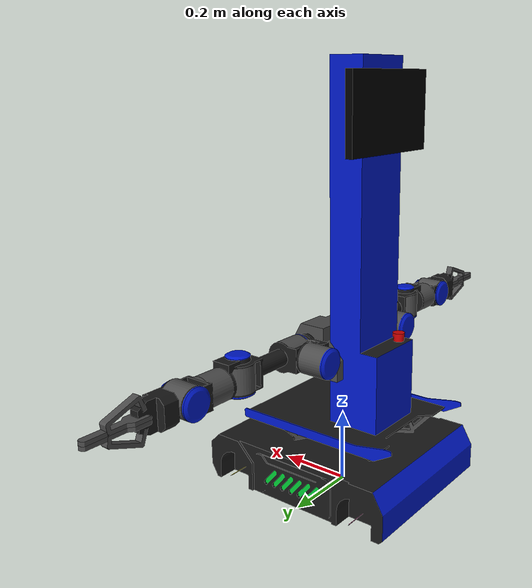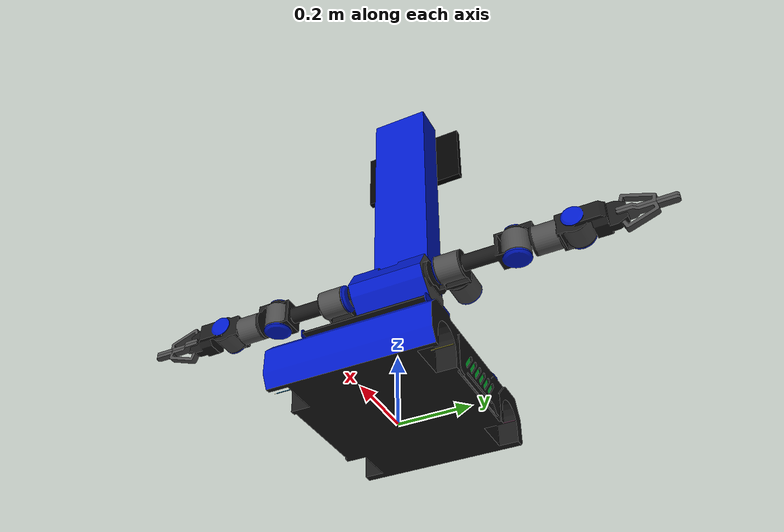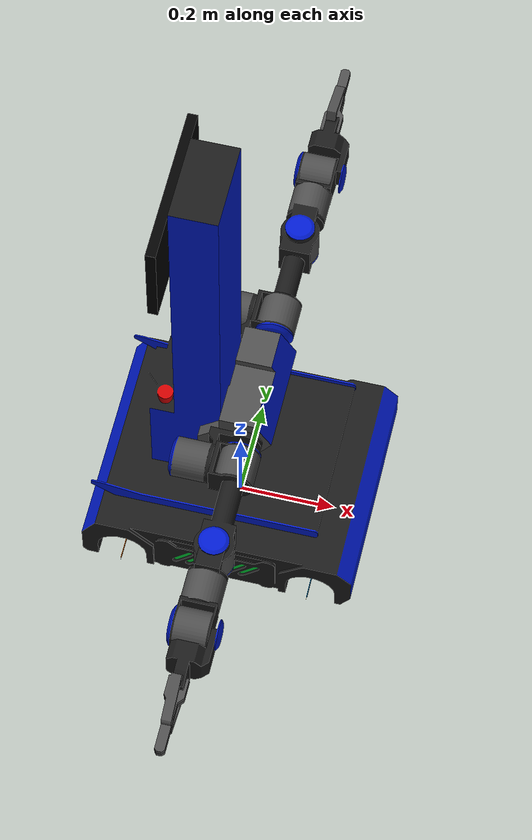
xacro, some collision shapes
<?xml version="1.0"?>
<robot name="wpr2" xmlns:xacro="http://ros.org/wiki/xacro">

  <xacro:include filename="base_mecanum.urdf.xacro"/>

  <xacro:include filename="torso.xacro"/>

  <!-- Left Arm -->
  <xacro:include filename="arm_left.urdf.xacro"/>
  <xacro:arm_left base_frame="chest_link" x="0.035" y="0.18" z="0.0" roll="0" pitch="${M_PI}" yaw="0"/>

  <!-- Right Arm -->
  <xacro:include filename="arm_right.urdf.xacro"/>
  <xacro:arm_right base_frame="chest_link" x="0.035" y="-0.18" z="0.0" roll="0" pitch="0" yaw="${M_PI}"/>

</robot>

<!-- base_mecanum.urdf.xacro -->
<robot xmlns:xacro="http://ros.org/wiki/xacro">
  <xacro:property name="M_PI" value="3.1415926535897931"/>
  <xacro:property name="length" value="0.395"/>
  <xacro:property name="width" value="0.37"/>
  <material name="black">
    <color rgba="0 0 0 1"/>
  </material>

  <!-- base_footprint -->
  <link name="base_footprint">
      <visual>
        <origin xyz="0 0 0" rpy="0 0 0" />
        <geometry>
          <box size="0.001 0.001 0.001" />
        </geometry>
        <material name="TransparentGreen" />
      </visual>
  </link>
  <joint name="base_joint" type="fixed">
    <origin xyz="0 0 0.02" rpy="0 0 0" />
    <parent link="base_footprint"/>
    <child link="base_link" />
  </joint>

  <!-- base_link -->
  <link name="base_link">
      <visual>
        <geometry>
            <mesh filename="package://wpr2_description/meshes/base.dae" scale="1 1 1"/>
        </geometry>
        <origin rpy = "0 0 0" xyz = "0.0 0.0 0.13"/>
      </visual>
      <!-- 底盘碰撞体 -->
      <collision>
        <origin xyz="0.005 0 0.07" rpy="0 0 0" />
        <geometry>
          <box size="0.57 0.46 0.12"/>
        </geometry>
      </collision>
      <!-- 上舱盖 -->
      <collision>
        <origin xyz="-0.03 0 0.20" rpy="0 0 0" />
        <geometry>
          <box size="0.50 0.37 0.04"/>
        </geometry>
      </collision>
      <!-- 立柱 -->
      <collision>
        <origin xyz="-0.07 0 0.68" rpy="0 0 0" />
        <geometry>
          <box size="0.10 0.20 0.90"/>
        </geometry>
      </collision>
      <!-- 屏幕 -->
      <collision>
        <origin rpy = "0 0 0" xyz = "-0.13 0.0 1.0"/>
        <geometry>
            <box size="0.02 0.32 0.2"/>
        </geometry>
      </collision>
      <inertial>
        <mass value="20"/>
        <inertia ixx="10" ixy="0.0" ixz="0.0" iyy="10" iyz="0.0" izz="10"/>
      </inertial>
  </link>

  <!-- Keep the screen visual separate so RViz uses its black material. -->
  <link name="rear_screen_link">
    <visual>
      <geometry>
        <box size="0.02 0.32 0.2"/>
      </geometry>
      <material name="black"/>
    </visual>
  </link>
  <joint name="rear_screen_joint" type="fixed">
    <parent link="base_link"/>
    <child link="rear_screen_link"/>
    <origin xyz="-0.13 0.0 1.0" rpy="0 0 0"/>
  </joint>

  <!-- mecanum wheel unit -->
  <xacro:macro name="mecanum_wheel" params="LR FB">
      <xacro:if value="${LR=='left'}">
        <xacro:property name="SignY" value="1"/>
        <xacro:property name="RollWheel" value="0"/>
      </xacro:if>
      <xacro:if value="${LR=='right'}">
        <xacro:property name="SignY" value="-1"/>
        <xacro:property name="RollWheel" value="3.1415926535897931"/>
      </xacro:if>
      <xacro:if value="${FB=='front'}">
        <xacro:property name="SignX" value="1"/>
      </xacro:if>
      <xacro:if value="${FB=='back'}">
        <xacro:property name="SignX" value="-1"/>
      </xacro:if>
      <link name="${FB}_${LR}_wheel_link">
          <visual>
              <origin xyz="0.0 0.06 0.0" rpy="1.570796327 0 0"/>
              <geometry>
                <xacro:if value="${(LR=='left' and FB=='front') or (LR=='right' and FB=='back')}">
                  <mesh filename="package://wpr2_description/meshes/mecanum_a.dae" scale="1 1 1"/>
                </xacro:if>
                <xacro:if value="${(LR=='right' and FB=='front')  or (LR=='left' and FB=='back')}">
                  <mesh filename="package://wpr2_description/meshes/mecanum_b.dae" scale="1 1 1"/>
                </xacro:if>
              </geometry>
          </visual>
          <collision>
            <origin xyz="0 0.029 0" rpy="1.570796327 0 0" />
            <geometry>
              <cylinder length="0.058" radius="0.001"/>
            </geometry>
          </collision>
          <inertial>
            <mass value="0.00001"/>
            <inertia ixx="0.1" ixy="0.0" ixz="0.0" iyy="0.1" iyz="0.0" izz="0.1"/>
          </inertial>
      </link>
      <joint name="${FB}_${LR}_wheel_joint" type="continuous">
          <parent link="base_link"/>
          <child link="${FB}_${LR}_wheel_link"/>
          <origin xyz="${SignX*length/2}   ${SignY*width/2}  0.029" rpy="${RollWheel} 0.0 0.0"/>
          <axis xyz="0 1 0"/>
      </joint>
  </xacro:macro>

  <!-- wheels -->
  <xacro:mecanum_wheel FB="front" LR="left"/>
  <xacro:mecanum_wheel FB="front" LR="right"/>
  <xacro:mecanum_wheel FB="back" LR="right"/>
  <xacro:mecanum_wheel FB="back" LR="left"/>

  <!-- foot unit -->
  <xacro:macro name="wheel_foot" params="LR FB">
      <xacro:if value="${LR=='left'}">
        <xacro:property name="SignY" value="1"/>
      </xacro:if>
      <xacro:if value="${LR=='right'}">
        <xacro:property name="SignY" value="-1"/>
      </xacro:if>
      <xacro:if value="${FB=='front'}">
        <xacro:property name="SignX" value="1"/>
      </xacro:if>
      <xacro:if value="${FB=='back'}">
        <xacro:property name="SignX" value="-1"/>
      </xacro:if>
      <link name="${FB}_${LR}_foot_link">
          <visual>
              <origin xyz="0.0 0.0 0.0" rpy="0 0 0"/>
              <geometry>
                <box size="0.001 0.001 0.001"/>
              </geometry>
          </visual>
          <collision>
            <origin xyz="0 0 0" rpy="0 0 0" />
            <geometry>
              <cylinder length="0.01" radius="0.05"/>
            </geometry>
          </collision>
          <inertial>
            <mass value="0.1"/>
            <inertia ixx="1" ixy="0.0" ixz="0.0" iyy="1" iyz="0.0" izz="1"/>
          </inertial>
      </link>
        <joint name="${FB}_${LR}_foot_joint" type="fixed">
          <parent link="base_link"/>
          <child link="${FB}_${LR}_foot_link"/>
          <origin xyz="${SignX*length/2}   ${SignY*width/1.5}  0.029" rpy="1.57 0.0 0.0"/>
      </joint>
  </xacro:macro>

  <xacro:wheel_foot FB="front" LR="left"/>
  <xacro:wheel_foot FB="front" LR="right"/>
  <xacro:wheel_foot FB="back" LR="right"/>
  <xacro:wheel_foot FB="back" LR="left"/>

  <!-- Lidar -->
  <link name="laser">
    <visual>
      <geometry>
        <cylinder length="0.001" radius="0.001"/>
      </geometry>
      <origin rpy="0 0 0" xyz="0 0 0"/>
    </visual>
  </link>
  <joint name="laser_joint" type="fixed">
    <origin rpy="0 0 3.1415926" xyz="0 0 0.16"/>
    <parent link="base_link"/>
    <child link="laser"/>
  </joint>

</robot>

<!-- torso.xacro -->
<robot xmlns:xacro="http://ros.org/wiki/xacro">
  <link name = "chest_link">
    <visual>
      <geometry>
        <mesh filename="package://wpr2_description/meshes/chest.dae" scale=" 1 1 1 "/>
      </geometry>
      <origin rpy = "0 0 0" xyz = "0.015 0.0 0.01"/>
    </visual>
    <collision>
      <origin xyz="0.04 0 -0.01" rpy="0 0 0"/>
      <geometry>
       <box size="0.1 0.22 0.15"/>
      </geometry>
    </collision>
     <inertial>
      <mass value="1"/>
      <inertia ixx="0.1" ixy="0.0" ixz="0.0" iyy="0.1" iyz="0.0" izz="0.01"/>
    </inertial>
  </link>

  <joint name="chest_height" type="prismatic">
    <parent link="base_link"/>
    <child link="chest_link"/>
    <limit effort="1000.0" lower="0" upper="0.7" velocity="0.5"/>
    <dynamics damping="0.0" friction="0.0"/>
    <origin xyz="0.0 0 0.4" rpy="0 0 0"/>
    <axis xyz="0 0 1"/>
  </joint>

  <!-- Camera -->
  <link name="femto_base">
    <visual>
      <origin rpy="0 0 0" xyz="0 0 0"/>
      <geometry>
        <box size="0 0 0"/>
      </geometry>
    </visual>
    <inertial>
      <mass value="0.1"/>
      <inertia ixx="0.1" ixy="0.0" ixz="0.0" iyy="0.1" iyz="0.0" izz="0.01"/>
    </inertial>
  </link>
  <joint name="femto_height" type="prismatic">
    <parent link="chest_link"/>
    <child link="femto_base"/>
    <limit effort="1000.0" lower="-1.0" upper="1.0" velocity="0.5"/>
    <origin xyz="0.05 0 0" rpy="0 -1.5707963 0"/>
  </joint>

  <link name="camera_link">
    <visual>
      <origin xyz="0 0 0" rpy="0 0 0"/>
      <geometry>
        <mesh filename="package://wpr2_description/meshes/femto_bolt.dae" scale="1 1 1"/>
      </geometry>
    </visual>
    <collision>
      <origin xyz="-0.015 0 0" rpy="0 0 0"/>
      <geometry>
       <box size="0.05 0.1 0.04"/>
      </geometry>
    </collision>
     <inertial>
      <mass value="1"/>
      <inertia ixx="0.1" ixy="0.0" ixz="0.0" iyy="0.1" iyz="0.0" izz="0.01"/>
    </inertial>
  </link>

  <joint name="femto_pitch" type="revolute">
    <axis xyz="0 -1 0"/>
    <limit effort="1000.0" lower="-1.57" upper="1.57" velocity="0.5"/>
    <origin xyz="0 0 0" rpy="0 1.57 0"/>
    <parent link="femto_base"/>
    <child link="camera_link"/>
  </joint>

</robot>

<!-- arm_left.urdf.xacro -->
<robot xmlns:xacro="http://ros.org/wiki/xacro">
  <material name="TransparentGreen">
    <color rgba="0.0 1.0 0.0 0.5"/>
  </material>
  <xacro:macro name="arm_left" params="base_frame x y z roll pitch yaw">
    <!-- joint 0 -->
    <link name="left_link_0">
    </link>
    <joint name="left_joint_0" type="fixed">
      <parent link="${base_frame}"/>
      <child link="left_link_0"/>
      <origin xyz="${x} ${y} ${z}" rpy="${roll} ${pitch} ${yaw}"/>
    </joint>

    <!-- joint 1 -->
    <link name="left_link_1">
      <visual>
        <geometry>
          <mesh filename="package://wpr2_description/meshes/arm/arm_link_1.dae" scale="1 1 1"/>
        </geometry>
        <origin rpy="${-M_PI*0.5} 0 ${M_PI*0.5}" xyz="0 -0.07 0"/>
      </visual>
      <collision>
        <origin xyz="0.09 0 0" rpy="0 ${M_PI*0.5} 0"/>
        <geometry>
          <cylinder length="0.07" radius="0.041"/>
        </geometry>
      </collision>
      <inertial>
        <mass value="0.1"/>
        <inertia ixx="0.1" ixy="0.0" ixz="0.0" iyy="0.1" iyz="0.0" izz="0.01"/>
      </inertial>
    </link>
    <joint name="left_joint_1" type="continuous">
      <parent link="left_link_0"/>
      <child link="left_link_1"/>
      <origin xyz="0.0 0 0.0" rpy="0 0 0"/>
      <axis xyz="0 1 0"/>
    </joint>

    <!-- joint 2 -->
    <link name="left_link_2">
      <visual>
        <geometry>
          <mesh filename="package://wpr2_description/meshes/arm/arm_link_2.dae" scale="1 1 1"/>
        </geometry>
        <origin rpy="${M_PI} ${M_PI} 0" xyz="0 0 0"/>
      </visual>
      <collision>
        <origin xyz="0 0.05 0 " rpy="${-M_PI*0.5} 0 0"/>
        <geometry>
          <cylinder length="0.18" radius="0.041"/>
        </geometry>
      </collision>
      <inertial>
        <mass value="0.1"/>
        <inertia ixx="0.1" ixy="0.0" ixz="0.0" iyy="0.1" iyz="0.0" izz="0.01"/>
      </inertial>
    </link>
    <joint name="left_joint_2" type="continuous">
      <parent link="left_link_1"/>
      <child link="left_link_2"/>
      <origin xyz="0 0 0 " rpy="0 ${M_PI} 0"/>
      <axis xyz="1 0 0"/>
    </joint>

    <!-- joint 3 -->
    <link name="left_link_3">
      <visual>
        <geometry>
          <mesh filename="package://wpr2_description/meshes/arm/arm_link_3.dae" scale="1 1 1"/>
        </geometry>
        <origin xyz="0 0.19 0" rpy="${-M_PI*0.5} 0 ${-M_PI*0.5}" />
      </visual>
      <collision>
        <origin xyz="0 0.19 0" rpy="0 0 0"/>
        <geometry>
          <cylinder length="0.12" radius="0.041"/>
        </geometry>
      </collision>
      <inertial>
        <mass value="0.1"/>
        <inertia ixx="0.1" ixy="0.0" ixz="0.0" iyy="0.1" iyz="0.0" izz="0.01"/>
      </inertial>
    </link>
    <joint name="left_joint_3" type="continuous">
      <parent link="left_link_2"/>
      <child link="left_link_3"/>
      <origin xyz="0 0 0 " rpy="0 0 0"/>
      <axis xyz="0 1 0"/>
    </joint>

    <!-- joint 4 -->
    <link name="left_link_4">
      <visual>
        <geometry>
          <mesh filename="package://wpr2_description/meshes/arm/arm_link_4.dae" scale="1 1 1"/>
        </geometry>
        <origin rpy="${M_PI*0.5} ${M_PI*0.5} 0" xyz="0 0 0.051"/>
      </visual>
      <collision>
        <origin xyz="0 0.09 0" rpy="${M_PI*0.5}  0 0"/>
        <geometry>
          <cylinder length="0.07" radius="0.041"/>
        </geometry>
      </collision>
      <inertial>
        <mass value="0.1"/>
        <inertia ixx="0.1" ixy="0.0" ixz="0.0" iyy="0.1" iyz="0.0" izz="0.01"/>
      </inertial>
    </link>
    <joint name="left_joint_4" type="continuous">
      <parent link="left_link_3"/>
      <child link="left_link_4"/>
      <origin xyz="0 0.19 0" rpy="0 0 0"/>
      <axis xyz="0 0 1"/>
    </joint>

    <!-- joint 5 -->
    <link name="left_link_5">
      <visual>
        <geometry>
          <mesh filename="package://wpr2_description/meshes/arm/arm_link_5.dae" scale="1 1 1"/>
        </geometry>
        <origin rpy="${-M_PI*0.5} 0 ${-M_PI*0.5}" xyz="0 0 0"/>
      </visual>
      <collision>
        <origin xyz="0 0 0" rpy="0 0 0"/>
        <geometry>
          <cylinder length="0.12" radius="0.041"/>
        </geometry>
      </collision>
      <inertial>
        <mass value="0.1"/>
        <inertia ixx="0.1" ixy="0.0" ixz="0.0" iyy="0.1" iyz="0.0" izz="0.01"/>
      </inertial>
    </link>
    <joint name="left_joint_5" type="continuous">
      <parent link="left_link_4"/>
      <child link="left_link_5"/>
      <origin xyz="0 0.17 0" rpy="0 ${M_PI*0.5} 0"/>
      <axis xyz="0 1 0"/>
    </joint>

    <!-- joint 6 -->
    <link name="left_link_6">
      <visual>
        <geometry>
          <mesh filename="package://wpr2_description/meshes/arm/arm_link_wrist.dae" scale="1 1 1"/>
        </geometry>
        <origin rpy="${-M_PI*0.5} ${M_PI*0.5}  0" xyz="0 0 0.05"/>
      </visual>
      <inertial>
        <mass value="0.1"/>
        <inertia ixx="0.1" ixy="0.0" ixz="0.0" iyy="0.1" iyz="0.0" izz="0.01"/>
      </inertial>
    </link>
    <joint name="left_joint_6" type="continuous">
      <parent link="left_link_5"/>
      <child link="left_link_6"/>
      <origin xyz="0 0 0" rpy="0 0 0"/>
      <axis xyz="0 0 1"/>
    </joint>

    <link name="left_link_knuckle_1">
      <visual>
        <geometry>
          <mesh filename="package://wpr2_description/meshes/arm/arm_link_knuckle.dae" scale="1 1 1"/>
        </geometry>
        <origin rpy="${-M_PI*0.5} ${M_PI*0.5} 0" xyz="0 0 0"/>
      </visual>
      <inertial>
        <mass value="0.1"/>
        <inertia ixx="0.1" ixy="0.0" ixz="0.0" iyy="0.1" iyz="0.0" izz="0.01"/>
      </inertial>
    </link>
    <joint name="left_joint_finger" type="revolute">
      <parent link="left_link_6"/>
      <child link="left_link_knuckle_1"/>
      <origin xyz="0.005 0.11 0" rpy="0 0 0"/>
      <axis xyz="0 0 -1"/>
      <limit effort="1000.0" lower="0" upper="1.57" velocity="0.5"/>
    </joint>

    <link name="left_link_tip_1">
      <visual>
        <geometry>
          <mesh filename="package://wpr2_description/meshes/arm/arm_link_tip.dae" scale="1 1 1"/>
        </geometry>
        <origin rpy="${-M_PI*0.5} ${M_PI*0.5} 0" xyz="0 0 0"/>
      </visual>
      <inertial>
        <mass value="0.1"/>
        <inertia ixx="0.1" ixy="0.0" ixz="0.0" iyy="0.1" iyz="0.0" izz="0.01"/>
      </inertial>
    </link>
    <joint name="left_joint_tip_1" type="revolute">
      <parent link="left_link_knuckle_1"/>
      <child link="left_link_tip_1"/>
      <origin xyz="0 0.095 0" rpy="0 0 0"/>
      <axis xyz="0 0 1"/>
      <limit effort="1000.0" lower="0" upper="1.57" velocity="0.5"/>
      <mimic joint="left_joint_finger" multiplier="1" offset="0"/>
    </joint>

    <link name="left_link_knuckle_2">
      <visual>
        <geometry>
          <mesh filename="package://wpr2_description/meshes/arm/arm_link_knuckle.dae" scale="1 1 1"/>
        </geometry>
        <origin rpy="${-M_PI*0.5} ${-M_PI*0.5} 0" xyz="0 0 0"/>
      </visual>
      <inertial>
        <mass value="0.1"/>
        <inertia ixx="0.1" ixy="0.0" ixz="0.0" iyy="0.1" iyz="0.0" izz="0.01"/>
      </inertial>
    </link>
    <joint name="left_joint_finger_2" type="revolute">
      <parent link="left_link_6"/>
      <child link="left_link_knuckle_2"/>
      <origin xyz="-0.005 0.11 0" rpy="0 0 0"/>
      <axis xyz="0 0 1"/>
      <limit effort="1000.0" lower="0" upper="1.57" velocity="0.5"/>
      <mimic joint="left_joint_finger" multiplier="1" offset="0"/>
    </joint>

    <link name="left_link_tip_2">
      <visual>
        <geometry>
          <mesh filename="package://wpr2_description/meshes/arm/arm_link_tip.dae" scale="1 1 1"/>
        </geometry>
        <origin rpy="${-M_PI*0.5} ${M_PI*0.5} 0" xyz="0 0 0"/>
      </visual>
      <inertial>
        <mass value="0.1"/>
        <inertia ixx="0.1" ixy="0.0" ixz="0.0" iyy="0.1" iyz="0.0" izz="0.01"/>
      </inertial>
    </link>
    <joint name="left_joint_tip_2" type="revolute">
      <parent link="left_link_knuckle_2"/>
      <child link="left_link_tip_2"/>
      <origin xyz="0 0.095 0" rpy="0 0 0"/>
      <axis xyz="0 0 -1"/>
      <limit effort="1000.0" lower="0" upper="1.57" velocity="0.5"/>
      <mimic joint="left_joint_finger" multiplier="1" offset="0"/>
    </joint>

    <!-- TCP(Tool Center Point) -->
    <link name="left_tcp_link">
      <inertial>
        <mass value="0.001" />
        <origin xyz="0 0 0" rpy="0 0 0" />
        <inertia ixx="0.0001" ixy="0" ixz="0" iyy="0.0001" iyz="0" izz="0.0001" />
      </inertial>
      <!-- 手爪根部 -->
      <collision>
        <origin rpy = "0 0 0" xyz = "0.0 -0.13 0.0"/>
        <geometry>
            <box size="0.08 0.05 0.1"/>
        </geometry>
      </collision>
       <!-- 手指活动范围 -->
      <collision>
        <origin rpy = "0 0 0" xyz = "0.0 -0.028 0.0"/>
        <geometry>
            <box size="0.18 0.15 0.04"/>
        </geometry>
      </collision>
    </link>

    <joint name="left_tcp_joint" type="fixed">
      <parent link="left_link_6" />
      <child link="left_tcp_link" />
      <origin xyz="0 0.2 0" rpy="0 0 0" />
    </joint>
  </xacro:macro>
</robot>

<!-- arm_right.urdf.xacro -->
<robot xmlns:xacro="http://ros.org/wiki/xacro">
  <xacro:macro name="arm_right" params="base_frame x y z roll pitch yaw">
    <!-- joint 0 -->
    <link name="right_link_0">
    </link>
    <joint name="right_joint_0" type="fixed">
      <parent link="${base_frame}"/>
      <child link="right_link_0"/>
      <origin xyz="${x} ${y} ${z}" rpy="${roll} ${pitch} ${yaw}"/>
    </joint>

    <!-- joint 1 -->
    <link name="right_link_1">
      <visual>
        <geometry>
          <mesh filename="package://wpr2_description/meshes/arm/arm_link_1.dae" scale="1 1 1"/>
        </geometry>
        <origin rpy="${-M_PI*0.5} 0 ${M_PI*0.5}" xyz="0 -0.07 0"/>
      </visual>
      <collision>
        <origin xyz="0.09 0 0" rpy="0 ${M_PI*0.5} 0"/>
        <geometry>
          <cylinder length="0.07" radius="0.041"/>
        </geometry>
      </collision>
      <inertial>
        <mass value="0.1"/>
        <inertia ixx="0.1" ixy="0.0" ixz="0.0" iyy="0.1" iyz="0.0" izz="0.01"/>
      </inertial>
    </link>
    <joint name="right_joint_1" type="continuous">
      <parent link="right_link_0"/>
      <child link="right_link_1"/>
      <origin xyz="0.0 0 0.0" rpy="0 0 0"/>
      <axis xyz="0 1 0"/>
    </joint>

    <!-- joint 2 -->
    <link name="right_link_2">
      <visual>
        <geometry>
          <mesh filename="package://wpr2_description/meshes/arm/arm_link_2.dae" scale="1 1 1"/>
        </geometry>
        <origin rpy="${M_PI} ${M_PI} 0" xyz="0 0 0"/>
      </visual>
      <collision>
        <origin xyz="0 0.05 0 " rpy="${-M_PI*0.5} 0 0"/>
        <geometry>
          <cylinder length="0.18" radius="0.041"/>
        </geometry>
      </collision>
      <inertial>
        <mass value="0.1"/>
        <inertia ixx="0.1" ixy="0.0" ixz="0.0" iyy="0.1" iyz="0.0" izz="0.01"/>
      </inertial>
    </link>
    <joint name="right_joint_2" type="continuous">
      <parent link="right_link_1"/>
      <child link="right_link_2"/>
      <origin xyz="0 0 0 " rpy="0 ${M_PI} 0"/>
      <axis xyz="1 0 0"/>
    </joint>

    <!-- joint 3 -->
    <link name="right_link_3">
      <visual>
        <geometry>
          <mesh filename="package://wpr2_description/meshes/arm/arm_link_3.dae" scale="1 1 1"/>
        </geometry>
        <origin xyz="0 0.19 0" rpy="${M_PI*0.5} 0 ${-M_PI*0.5}" />
      </visual>
      <collision>
        <origin xyz="0 0.19 0" rpy="0 0 0"/>
        <geometry>
          <cylinder length="0.12" radius="0.041"/>
        </geometry>
      </collision>
      <inertial>
        <mass value="0.1"/>
        <inertia ixx="0.1" ixy="0.0" ixz="0.0" iyy="0.1" iyz="0.0" izz="0.01"/>
      </inertial>
    </link>
    <joint name="right_joint_3" type="continuous">
      <parent link="right_link_2"/>
      <child link="right_link_3"/>
      <origin xyz="0 0 0 " rpy="0 0 0"/>
      <axis xyz="0 1 0"/>
    </joint>

    <!-- joint 4 -->
    <link name="right_link_4">
      <visual>
        <geometry>
          <mesh filename="package://wpr2_description/meshes/arm/arm_link_4.dae" scale="1 1 1"/>
        </geometry>
        <origin rpy="${M_PI*0.5} ${M_PI*0.5} 0" xyz="0 0 0.051"/>
      </visual>
      <collision>
        <origin xyz="0 0.09 0" rpy="${M_PI*0.5}  0 0"/>
        <geometry>
          <cylinder length="0.07" radius="0.041"/>
        </geometry>
      </collision>
      <inertial>
        <mass value="0.1"/>
        <inertia ixx="0.1" ixy="0.0" ixz="0.0" iyy="0.1" iyz="0.0" izz="0.01"/>
      </inertial>
    </link>
    <joint name="right_joint_4" type="continuous">
      <parent link="right_link_3"/>
      <child link="right_link_4"/>
      <origin xyz="0 0.19 0" rpy="0 ${M_PI} 0"/>
      <axis xyz="0 0 1"/>
    </joint>

    <!-- joint 5 -->
    <link name="right_link_5">
      <visual>
        <geometry>
          <mesh filename="package://wpr2_description/meshes/arm/arm_link_5.dae" scale="1 1 1"/>
        </geometry>
        <origin rpy="${-M_PI*0.5} 0 ${-M_PI*0.5}" xyz="0 0 0"/>
      </visual>
      <collision>
        <origin xyz="0 0 0" rpy="0 0 0"/>
        <geometry>
          <cylinder length="0.12" radius="0.041"/>
        </geometry>
      </collision>
      <inertial>
        <mass value="0.1"/>
        <inertia ixx="0.1" ixy="0.0" ixz="0.0" iyy="0.1" iyz="0.0" izz="0.01"/>
      </inertial>
    </link>
    <joint name="right_joint_5" type="continuous">
      <parent link="right_link_4"/>
      <child link="right_link_5"/>
      <origin xyz="0 0.17 0" rpy="0 ${-M_PI*0.5} 0"/>
      <axis xyz="0 1 0"/>
    </joint>

    <!-- joint 6 -->
    <link name="right_link_6">
      <visual>
        <geometry>
          <mesh filename="package://wpr2_description/meshes/arm/arm_link_wrist.dae" scale="1 1 1"/>
        </geometry>
        <origin rpy="${-M_PI*0.5} ${M_PI*0.5}  0" xyz="0 0 0.05"/>
      </visual>
      <inertial>
        <mass value="0.1"/>
        <inertia ixx="0.1" ixy="0.0" ixz="0.0" iyy="0.1" iyz="0.0" izz="0.01"/>
      </inertial>
    </link>
    <joint name="right_joint_6" type="continuous">
      <parent link="right_link_5"/>
      <child link="right_link_6"/>
      <origin xyz="0 0 0" rpy="0 0 0"/>
      <axis xyz="0 0 1"/>
    </joint>

    <link name="right_link_knuckle_1">
      <visual>
        <geometry>
          <mesh filename="package://wpr2_description/meshes/arm/arm_link_knuckle.dae" scale="1 1 1"/>
        </geometry>
        <origin rpy="${-M_PI*0.5} ${M_PI*0.5} 0" xyz="0 0 0"/>
      </visual>
      <inertial>
        <mass value="0.1"/>
        <inertia ixx="0.1" ixy="0.0" ixz="0.0" iyy="0.1" iyz="0.0" izz="0.01"/>
      </inertial>
    </link>
    <joint name="right_joint_finger" type="revolute">
      <parent link="right_link_6"/>
      <child link="right_link_knuckle_1"/>
      <origin xyz="0.005 0.11 0" rpy="0 0 0"/>
      <axis xyz="0 0 -1"/>
      <limit effort="1000.0" lower="0" upper="1.57" velocity="0.5"/>
    </joint>

    <link name="right_link_tip_1">
      <visual>
        <geometry>
          <mesh filename="package://wpr2_description/meshes/arm/arm_link_tip.dae" scale="1 1 1"/>
        </geometry>
        <origin rpy="${-M_PI*0.5} ${M_PI*0.5} 0" xyz="0 0 0"/>
      </visual>
      <inertial>
        <mass value="0.1"/>
        <inertia ixx="0.1" ixy="0.0" ixz="0.0" iyy="0.1" iyz="0.0" izz="0.01"/>
      </inertial>
    </link>
    <joint name="right_joint_tip_1" type="revolute">
      <parent link="right_link_knuckle_1"/>
      <child link="right_link_tip_1"/>
      <origin xyz="0 0.095 0" rpy="0 0 0"/>
      <axis xyz="0 0 1"/>
      <limit effort="1000.0" lower="0" upper="1.57" velocity="0.5"/>
      <mimic joint="right_joint_finger" multiplier="1" offset="0"/>
    </joint>

    <link name="right_link_knuckle_2">
      <visual>
        <geometry>
          <mesh filename="package://wpr2_description/meshes/arm/arm_link_knuckle.dae" scale="1 1 1"/>
        </geometry>
        <origin rpy="${-M_PI*0.5} ${-M_PI*0.5} 0" xyz="0 0 0"/>
      </visual>
      <inertial>
        <mass value="0.1"/>
        <inertia ixx="0.1" ixy="0.0" ixz="0.0" iyy="0.1" iyz="0.0" izz="0.01"/>
      </inertial>
    </link>
    <joint name="right_joint_finger_2" type="revolute">
      <parent link="right_link_6"/>
      <child link="right_link_knuckle_2"/>
      <origin xyz="-0.005 0.11 0" rpy="0 0 0"/>
      <axis xyz="0 0 1"/>
      <limit effort="1000.0" lower="0" upper="1.57" velocity="0.5"/>
      <mimic joint="right_joint_finger" multiplier="1" offset="0"/>
    </joint>

    <link name="right_link_tip_2">
      <visual>
        <geometry>
          <mesh filename="package://wpr2_description/meshes/arm/arm_link_tip.dae" scale="1 1 1"/>
        </geometry>
        <origin rpy="${-M_PI*0.5} ${M_PI*0.5} 0" xyz="0 0 0"/>
      </visual>
      <inertial>
        <mass value="0.1"/>
        <inertia ixx="0.1" ixy="0.0" ixz="0.0" iyy="0.1" iyz="0.0" izz="0.01"/>
      </inertial>
    </link>
    <joint name="right_joint_tip_2" type="revolute">
      <parent link="right_link_knuckle_2"/>
      <child link="right_link_tip_2"/>
      <origin xyz="0 0.095 0" rpy="0 0 0"/>
      <axis xyz="0 0 -1"/>
      <limit effort="1000.0" lower="0" upper="1.57" velocity="0.5"/>
      <mimic joint="right_joint_finger" multiplier="1" offset="0"/>
    </joint>

    <!-- TCP(Tool Center Point) -->
    <link name="right_tcp_link">
      <inertial>
        <mass value="0.001" />
        <origin xyz="0 0 0" rpy="0 0 0" />
        <inertia ixx="0.0001" ixy="0" ixz="0" iyy="0.0001" iyz="0" izz="0.0001" />
      </inertial>
      <!-- 手爪根部 -->
      <collision>
        <origin rpy = "0 0 0" xyz = "0.0 -0.13 0.0"/>
        <geometry>
            <box size="0.08 0.05 0.1"/>
        </geometry>
      </collision>
       <!-- 手指活动范围 -->
      <collision>
        <origin rpy = "0 0 0" xyz = "0.0 -0.028 0.0"/>
        <geometry>
            <box size="0.18 0.15 0.04"/>
        </geometry>
      </collision>
    </link>

    <joint name="right_tcp_joint" type="fixed">
      <parent link="right_link_6" />
      <child link="right_tcp_link" />
      <origin xyz="0 0.2 0" rpy="0 0 0" />
    </joint>
  </xacro:macro>
</robot>
